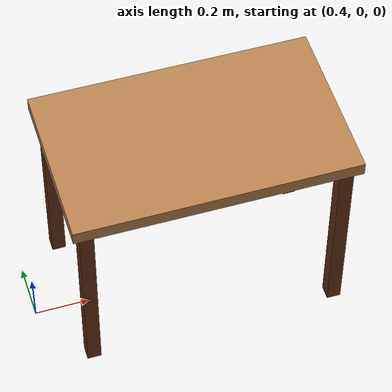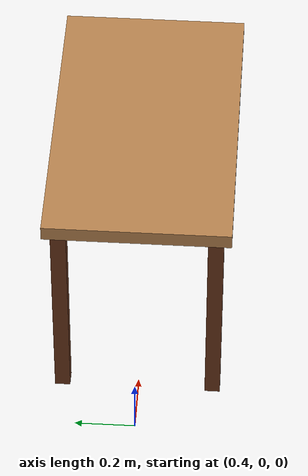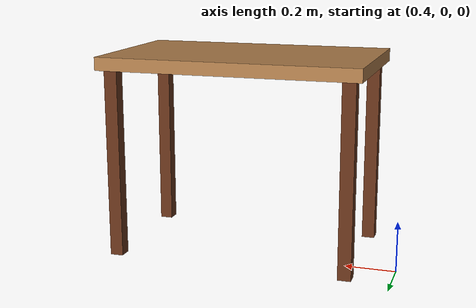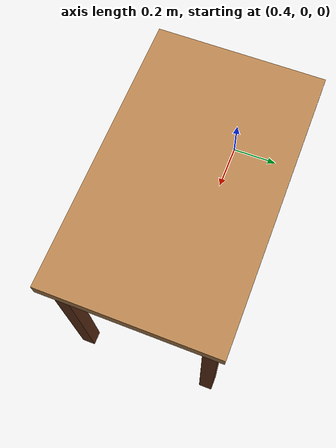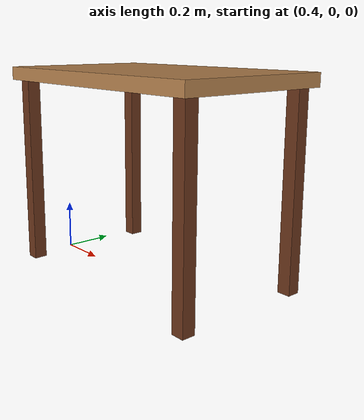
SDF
<?xml version="1.0" ?>
<sdf version="1.5">
  <world name="test_env">

    <include>
      <uri>model://sun</uri>
    </include>

    <model name="four_leg_table">
      <static>true</static>
      <pose>1 0 0.8 0 0 0</pose>

      <link name="tabletop">
        <pose>0 0 0 0 0 0</pose>
        <inertial>
          <mass>1.0</mass>
          <inertia>
            <ixx>0.1</ixx><iyy>0.1</iyy><izz>0.1</izz>
            <ixy>0</ixy><ixz>0</ixz><iyz>0</iyz>
          </inertia>
        </inertial>
        <collision name="collision">
          <geometry>
            <box><size>1 0.6 0.05</size></box>
          </geometry>
        </collision>
        <visual name="visual">
          <geometry>
            <box><size>1 0.6 0.05</size></box>
          </geometry>
          <material>
            <ambient>0.7 0.5 0.3 1</ambient>
            <diffuse>0.7 0.5 0.3 1</diffuse>
            <specular>0.1 0.1 0.1 1</specular>
          </material>
        </visual>
      </link>

      <link name="leg_fl">
        <pose>-0.45 0.25 -0.375 0 0 0</pose>
        <collision name="collision">
          <geometry>
            <box><size>0.05 0.05 0.75</size></box>
          </geometry>
        </collision>
        <visual name="visual">
          <geometry>
            <box><size>0.05 0.05 0.75</size></box>
          </geometry>
          <material>
            <ambient>0.4 0.2 0.1 1</ambient>
            <diffuse>0.4 0.2 0.1 1</diffuse>
          </material>
        </visual>
      </link>

      <link name="leg_fr">
        <pose>0.45 0.25 -0.375 0 0 0</pose>
        <collision name="collision">
          <geometry>
            <box><size>0.05 0.05 0.75</size></box>
          </geometry>
        </collision>
        <visual name="visual">
          <geometry>
            <box><size>0.05 0.05 0.75</size></box>
          </geometry>
          <material>
            <ambient>0.4 0.2 0.1 1</ambient>
            <diffuse>0.4 0.2 0.1 1</diffuse>
          </material>
        </visual>
      </link>

      <link name="leg_bl">
        <pose>-0.45 -0.25 -0.375 0 0 0</pose>
        <collision name="collision">
          <geometry>
            <box><size>0.05 0.05 0.75</size></box>
          </geometry>
        </collision>
        <visual name="visual">
          <geometry>
            <box><size>0.05 0.05 0.75</size></box>
          </geometry>
          <material>
            <ambient>0.4 0.2 0.1 1</ambient>
            <diffuse>0.4 0.2 0.1 1</diffuse>
          </material>
        </visual>
      </link>

      <link name="leg_br">
        <pose>0.45 -0.25 -0.375 0 0 0</pose>
        <collision name="collision">
          <geometry>
            <box><size>0.05 0.05 0.75</size></box>
          </geometry>
        </collision>
        <visual name="visual">
          <geometry>
            <box><size>0.05 0.05 0.75</size></box>
          </geometry>
          <material>
            <ambient>0.4 0.2 0.1 1</ambient>
            <diffuse>0.4 0.2 0.1 1</diffuse>
          </material>
        </visual>
      </link>

    </model>
  </world>
</sdf>
